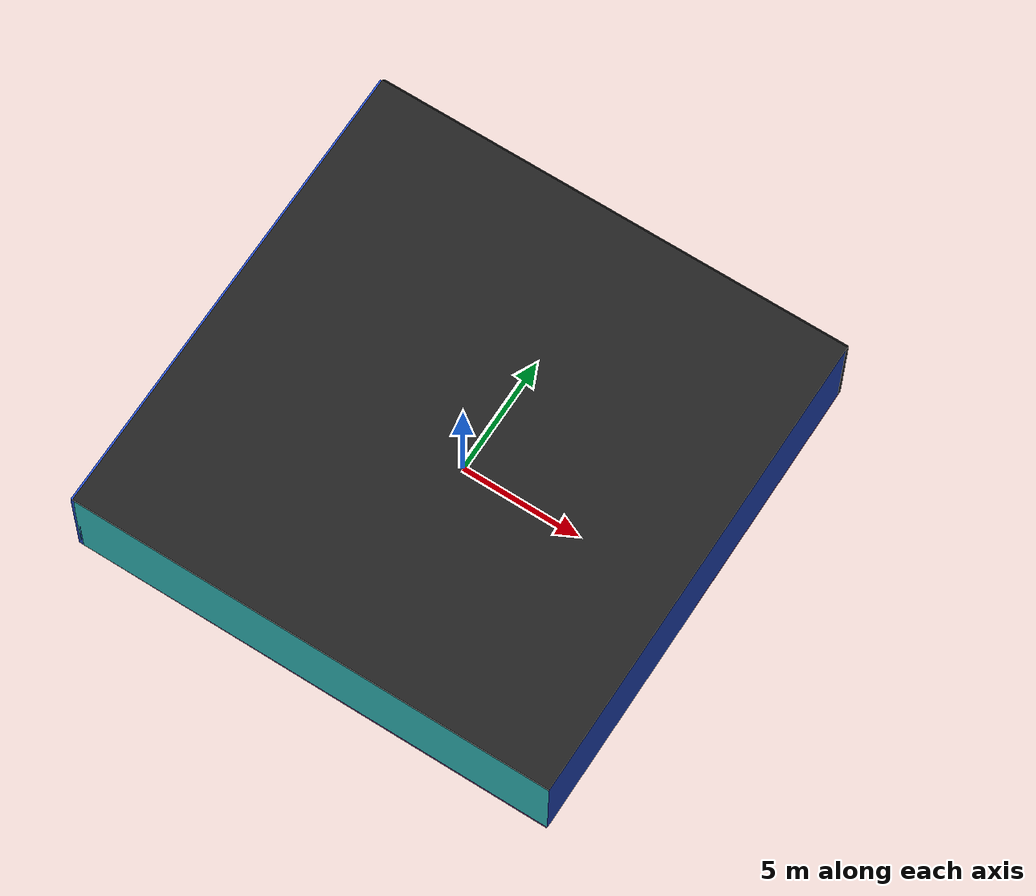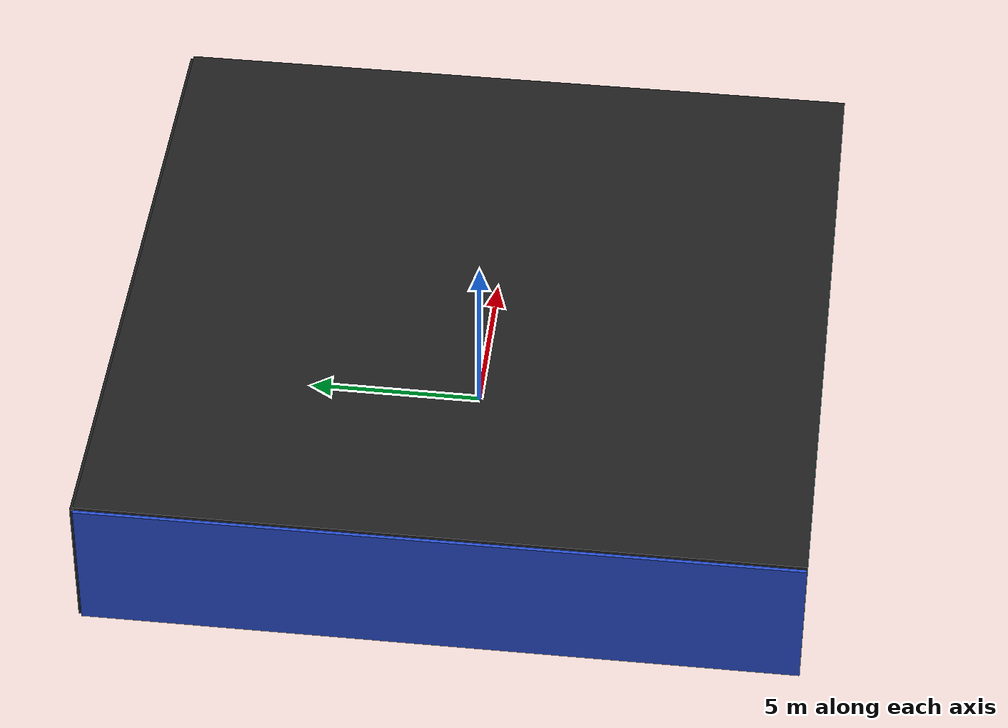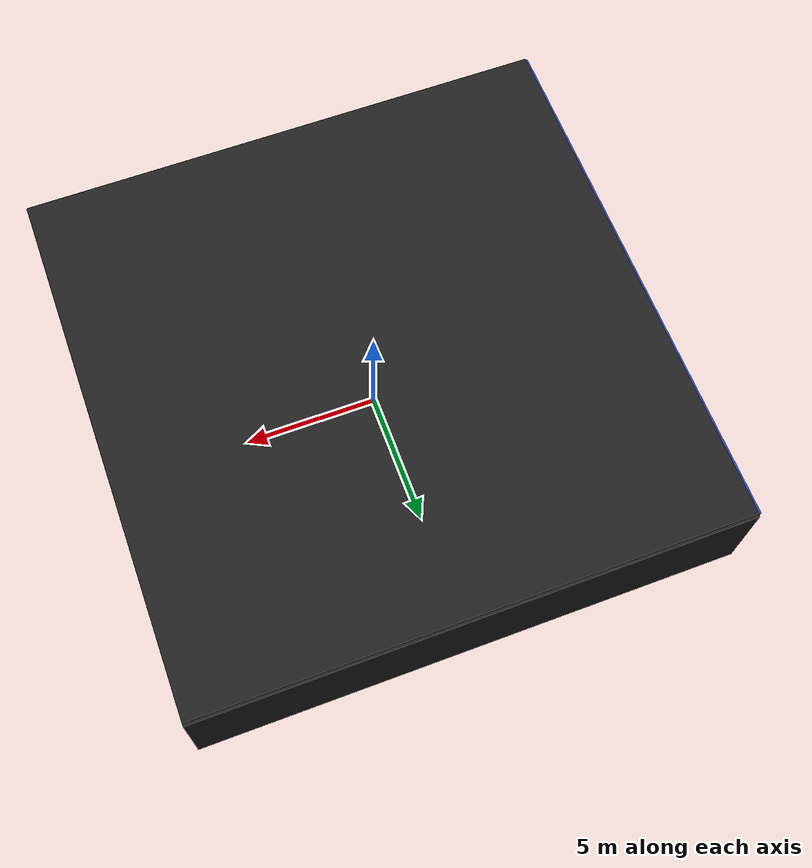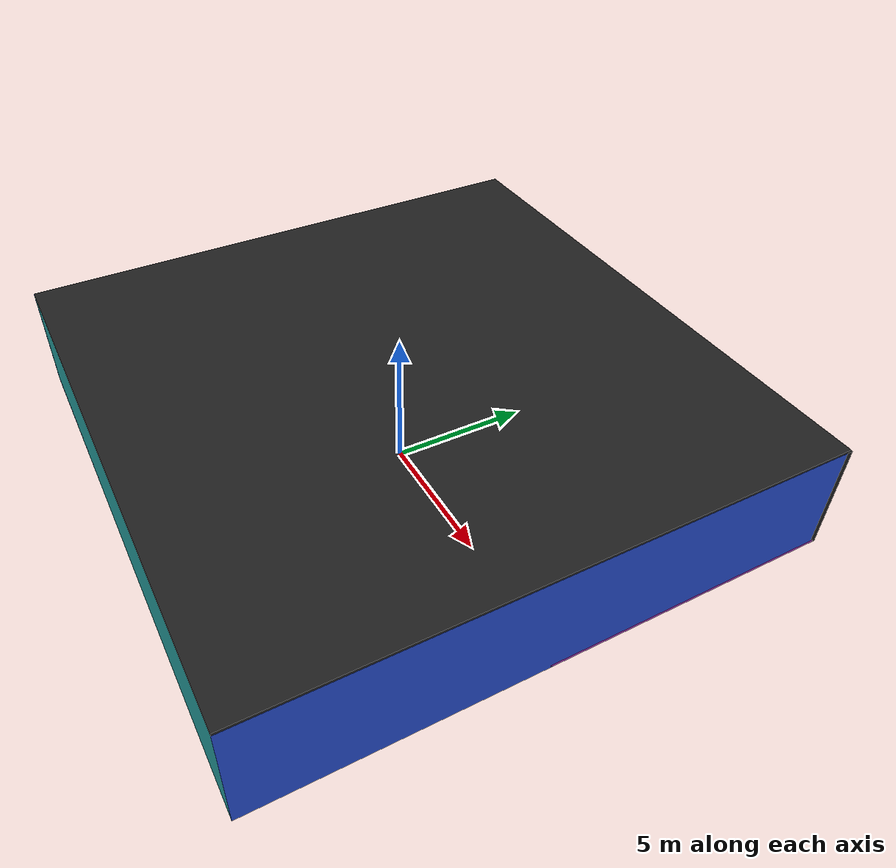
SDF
<sdf version="1.4">
 <world name="default">
  <physics type="ode">
   <max_step_size>0.001</max_step_size>
   <real_time_factor>1</real_time_factor>
   <real_time_update_rate>1000</real_time_update_rate>
   <gravity>0 0 -9.8</gravity>
  </physics>
  <scene><ambient>0.4 0.4 0.4 1</ambient><background>0.7 0.7 0.7 1</background><shadows>1</shadows></scene>
  <model name="Surrounding">
   <static>1</static>
   <link name="Ceiling">
    <collision name="Ceiling_Collision"><geometry><box><size>20 20 0.1</size></box></geometry></collision>
    <visual name="Ceiling_Visual">
     <geometry><box><size>20 20 0.1</size></box></geometry>
     <material>
      <script><uri>file://media/materials/scripts/gazebo.material</uri><name>Gazebo/FlatBlack</name></script>
     </material>
    </visual>
    <pose>0 0 4.05 0 0 0</pose>
   </link>
   <link name="Wall_South">
    <collision name="Wall_South_Collision">
     <geometry><box><size>20 0 4</size></box></geometry>
     <pose>0 0 2 0 -0 0</pose>
    </collision>
    <visual name="Wall_South_Visual">
     <pose>0 0 2 0 -0 0</pose>
     <geometry><box><size>20 0 4</size></box></geometry>
     <material>
      <script><uri>file://media/materials/scripts/gazebo.material</uri><name>Gazebo/TurquoiseGlow</name></script>
     </material>
    </visual>
    <velocity_decay><linear>0</linear><angular>0</angular></velocity_decay>
    <pose>0 -10 0 0 -0 0</pose>
   </link>
   <link name="Wall_East">
    <collision name="Wall_21_Collision">
     <geometry><box><size>20 0 4</size></box></geometry>
     <pose>0 0 2 0 -0 0</pose>
    </collision>
    <visual name="Wall_21_Visual">
     <pose>0 0 2 0 -0 0</pose>
     <geometry><box><size>20 0 4</size></box></geometry>
     <material>
      <script><uri>file://media/materials/scripts/gazebo.material</uri><name>Gazebo/BlueLaser</name></script>
     </material>
    </visual>
    <velocity_decay><linear>0</linear><angular>0</angular></velocity_decay>
    <pose>10 0 0 0 -0 1.5708</pose>
   </link>
   <link name="Wall_North">
    <collision name="Wall_22_Collision">
     <geometry><box><size>20 0.2 4</size></box></geometry>
     <pose>0 0 2 0 -0 0</pose>
    </collision>
    <visual name="Wall_22_Visual">
     <pose>0 0 2 0 -0 0</pose>
     <geometry><box><size>20 0.2 4</size></box></geometry>
     <material>
      <script><uri>file://media/materials/scripts/gazebo.material</uri><name>Gazebo/Black</name></script>
     </material>
    </visual>
    <velocity_decay><linear>0</linear><angular>0</angular></velocity_decay>
    <pose>0 10 0 0 -0 0</pose>
   </link>
   <link name="Wall_West">
    <collision name="Wall_23_Collision">
     <geometry><box><size>20 0.2 4</size></box></geometry>
     <pose>0 0 2 0 -0 0</pose>
    </collision>
    <visual name="Wall_23_Visual">
     <pose>0 0 2 0 -0 0</pose>
     <geometry><box><size>20 0.2 4</size></box></geometry>
     <material>
      <script><uri>file://media/materials/scripts/gazebo.material</uri><name>Gazebo/Blue</name></script>
     </material>
    </visual>
    <velocity_decay><linear>0</linear><angular>0</angular></velocity_decay>
    <pose>-10 0 0 0 0 -1.5708</pose>
   </link>
   <link name="Ground_link">
    <collision name="collision">
     <pose>0 0 .05 0 -0 0</pose>
     <geometry><box><size>20 20 0.1</size></box></geometry>
    </collision>
    <visual name="visual">
     <pose>0 0 .05 0 -0 0</pose>
     <geometry><box><size>20 20 0.1</size></box></geometry>
     <material>
      <script><uri>file://media/materials/scripts/gazebo.material</uri><name>Gazebo/PurpleGlow</name></script>
     </material>
    </visual>
   </link>
   <static>1</static>
  </model>
  <spherical_coordinates>
   <surface_model>EARTH_WGS84</surface_model>
   <latitude_deg>0</latitude_deg>
   <longitude_deg>0</longitude_deg>
   <elevation>0</elevation>
   <heading_deg>0</heading_deg>
  </spherical_coordinates>
  <light name="lightball_0" type="diffuse">
   <diffuse>0.8 0.8 0.8 1</diffuse>
   <specular>0.2 0.2 0.2 1</specular>
   <attenuation>
    <range>100</range>
    <constant>0.7</constant>
    <linear>0.01</linear>
    <quadratic>0.001</quadratic>
   </attenuation>
   <direction>-0.5 0.1 -0.9</direction>
   <pose>6.11108489693 -5.58570008549 3.73061773345 0 0 0</pose>
  </light>
  <light name="lightball_1" type="diffuse">
   <diffuse>0.8 0.8 0.8 1</diffuse>
   <specular>0.2 0.2 0.2 1</specular>
   <attenuation>
    <range>100</range>
    <constant>0.7</constant>
    <linear>0.01</linear>
    <quadratic>0.001</quadratic>
   </attenuation>
   <direction>-0.5 0.1 -0.9</direction>
   <pose>-1.68103750356 -7.59623060592 2.11062444611 0 0 0</pose>
  </light>
  <light name="lightball_2" type="diffuse">
   <diffuse>0.8 0.8 0.8 1</diffuse>
   <specular>0.2 0.2 0.2 1</specular>
   <attenuation>
    <range>100</range>
    <constant>0.7</constant>
    <linear>0.01</linear>
    <quadratic>0.001</quadratic>
   </attenuation>
   <direction>-0.5 0.1 -0.9</direction>
   <pose>-5.14067272497 -0.369083790909 0.642462579813 0 0 0</pose>
  </light>
  <light name="lightball_3" type="diffuse">
   <diffuse>0.8 0.8 0.8 1</diffuse>
   <specular>0.2 0.2 0.2 1</specular>
   <attenuation>
    <range>100</range>
    <constant>0.7</constant>
    <linear>0.01</linear>
    <quadratic>0.001</quadratic>
   </attenuation>
   <direction>-0.5 0.1 -0.9</direction>
   <pose>-6.56355087726 -5.18750412202 1.52714559783 0 0 0</pose>
  </light>
  <light name="lightball_4" type="diffuse">
   <diffuse>0.8 0.8 0.8 1</diffuse>
   <specular>0.2 0.2 0.2 1</specular>
   <attenuation>
    <range>100</range>
    <constant>0.7</constant>
    <linear>0.01</linear>
    <quadratic>0.001</quadratic>
   </attenuation>
   <direction>-0.5 0.1 -0.9</direction>
   <pose>4.73401783268 -2.24292268995 0.69580318051 0 0 0</pose>
  </light>
  <light name="lightball_5" type="diffuse">
   <diffuse>0.8 0.8 0.8 1</diffuse>
   <specular>0.2 0.2 0.2 1</specular>
   <attenuation>
    <range>100</range>
    <constant>0.7</constant>
    <linear>0.01</linear>
    <quadratic>0.001</quadratic>
   </attenuation>
   <direction>-0.5 0.1 -0.9</direction>
   <pose>-7.81544650893 5.15642917908 0.742066333562 0 0 0</pose>
  </light>
  <include><uri>model://cabinet</uri><pose>7.16128273878 -7.12487925031 0 0 0 1.50933452583</pose></include>
  <include>
   <uri>model://textured_shapes</uri>
   <pose>7.54029785123 -4.92879642017 0 0 0 3.07221844687</pose>
  </include>
  <include>
   <uri>model://robocup_3Dsim_goal</uri>
   <pose>7.43149311899 -1.35623789874 0 0 0 1.93109908205</pose>
  </include>
 </world>
</sdf>

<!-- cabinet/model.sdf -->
<sdf version="1.5">
  <model name="cabinet">
    <static>true</static>
    <link name="cabinet_bottom_plate">
      <inertial>
        <pose>0 0 -1 0 0 0</pose>
        <inertia>
          <ixx>2.050000</ixx>
          <ixy>0</ixy>
          <ixz>0</ixz>
          <iyy>2.050000</iyy>
          <iyz>0</iyz>
          <izz>2.050000</izz>
        </inertia>
        <mass>25.000000</mass>
      </inertial>
      <collision name="cabinet_bottom_plate_geom">
        <pose>0 0 0.010000 0 0 0</pose>
        <geometry>
          <box>
            <size>0.450000 0.450000 0.020000</size>
          </box>
        </geometry>
      </collision>
      <visual name="cabinet_bottom_plate_geom_visual">
        <pose>0 0 0.010000 0 0 0</pose>
        <geometry>
          <box>
            <size>0.450000 0.450000 0.020000</size>
          </box>
        </geometry>
        <material>
          <script>
            <uri>model://media/materials/scripts/gazebo.material</uri>
            <name>Gazebo/Wood</name>
          </script>
        </material>
      </visual>
      <collision name="cabinet_bottom_plate_geom_cabinet_back_plate">
        <pose>0.235000 0 0.510000 0 0 0</pose>
        <geometry>
          <box>
            <size>0.020000 0.450000 1.020000</size>
          </box>
        </geometry>
      </collision>
      <visual name="cabinet_bottom_plate_geom_cabinet_back_plate_visual">
        <pose>0.235000 0 0.510000 0 0 0</pose>
        <geometry>
          <box>
            <size>0.020000 0.450000 1.020000</size>
          </box>
        </geometry>
        <material>
          <script>
            <uri>model://media/materials/scripts/gazebo.material</uri>
            <name>Gazebo/Wood</name>
          </script>
        </material>
      </visual>
      <collision name="cabinet_bottom_plate_geom_cabinet_left_plate">
        <pose>0 0.235000 0.510000 0 0 0</pose>
        <geometry>
          <box>
            <size>0.450000 0.020000 1.020000</size>
          </box>
        </geometry>
      </collision>
      <visual name="cabinet_bottom_plate_geom_cabinet_left_plate_visual">
        <pose>0 0.235000 0.510000 0 0 0</pose>
        <geometry>
          <box>
            <size>0.450000 0.020000 1.020000</size>
          </box>
        </geometry>
        <material>
          <script>
            <uri>model://media/materials/scripts/gazebo.material</uri>
            <name>Gazebo/Wood</name>
          </script>
        </material>
      </visual>
      <collision name="cabinet_bottom_plate_geom_cabinet_middle_plate">
        <pose>0 0 0.510000 0 0 0</pose>
        <geometry>
          <box>
            <size>0.450000 0.450000 0.020000</size>
          </box>
        </geometry>
      </collision>
      <visual name="cabinet_bottom_plate_geom_cabinet_middle_plate_visual">
        <pose>0 0 0.510000 0 0 0</pose>
        <geometry>
          <box>
            <size>0.450000 0.450000 0.020000</size>
          </box>
        </geometry>
        <material>
          <script>
            <uri>model://media/materials/scripts/gazebo.material</uri>
            <name>Gazebo/Wood</name>
          </script>
        </material>
      </visual>
      <collision name="cabinet_bottom_plate_geom_cabinet_right_plate">
        <pose>0 -0.235000 0.510000 0 0 0</pose>
        <geometry>
          <box>
            <size>0.450000 0.020000 1.020000</size>
          </box>
        </geometry>
      </collision>
      <visual name="cabinet_bottom_plate_geom_cabinet_right_plate_visual">
        <pose>0 -0.235000 0.510000 0 0 0</pose>
        <geometry>
          <box>
            <size>0.450000 0.020000 1.020000</size>
          </box>
        </geometry>
        <material>
          <script>
            <uri>model://media/materials/scripts/gazebo.material</uri>
            <name>Gazebo/Wood</name>
          </script>
        </material>
      </visual>
      <collision name="cabinet_bottom_plate_geom_cabinet_top_plate">
        <pose>0 0 1.010000 0 0 0</pose>
        <geometry>
          <box>
            <size>0.450000 0.450000 0.020000</size>
          </box>
        </geometry>
      </collision>
      <visual name="cabinet_bottom_plate_geom_cabinet_top_plate_visual">
        <pose>0 0 1.010000 0 0 0</pose>
        <geometry>
          <box>
            <size>0.450000 0.450000 0.020000</size>
          </box>
        </geometry>
        <material>
          <script>
            <uri>model://media/materials/scripts/gazebo.material</uri>
            <name>Gazebo/Wood</name>
          </script>
        </material>
      </visual>
    </link>
  </model>
</sdf>

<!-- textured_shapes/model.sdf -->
<sdf version="1.6">
  <model name="textured_shapes">
    <pose>0 0 0.5 0 0 0</pose>
    <link name="box">
      <pose>0 -1.5 0 0 0 0</pose>
      <collision name="collision">
        <geometry>
          <box>
            <size>1 1 1</size>
          </box>
        </geometry>
      </collision>
      <visual name="visual">
        <geometry>
          <box>
            <size>1 1 1</size>
          </box>
        </geometry>
        <material>
          <script>
            <uri>model://../model_source/models/textured_shapes/materials/scripts</uri>
            <uri>model://../model_source/models/textured_shapes/materials/textures</uri>
            <name>TexturedShape/Squares</name>
          </script>
        </material>
      </visual>
    </link>
    <link name="sphere">
      <collision name="collision">
        <geometry>
          <sphere>
            <radius>0.5</radius>
          </sphere>
        </geometry>
      </collision>
      <visual name="visual">
        <geometry>
          <sphere>
            <radius>0.5</radius>
          </sphere>
        </geometry>
        <material>
          <script>
            <uri>model://../model_source/models/textured_shapes/materials/scripts</uri>
            <uri>model://../model_source/models/textured_shapes/materials/textures</uri>
            <name>TexturedShape/Squares</name>
          </script>
        </material>
      </visual>
    </link>
    <link name="cylinder">
      <pose>0 1.5 0 0 0 0</pose>
      <collision name="collision">
        <geometry>
          <cylinder>
            <radius>0.5</radius>
            <length>1</length>
          </cylinder>
        </geometry>
      </collision>
      <visual name="visual">
        <geometry>
          <cylinder>
            <radius>0.5</radius>
            <length>1</length>
          </cylinder>
        </geometry>
        <material>
          <script>
            <uri>model://../model_source/models/textured_shapes/materials/scripts</uri>
            <uri>model://../model_source/models/textured_shapes/materials/textures</uri>
            <name>TexturedShape/Squares</name>
          </script>
        </material>
      </visual>
    </link>
  </model>
</sdf>

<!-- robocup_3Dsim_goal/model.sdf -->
<sdf version="1.5">
  <model name="robocup_3d_goal">
    <static>true</static>
    <link name="left_post">
      <pose>0 1.05 0.45 0 0 0</pose>
      <collision name="collision">
        <geometry>
          <cylinder>
            <radius>0.05</radius>
            <length>0.9</length>
          </cylinder>
        </geometry>
      </collision>
      <visual name="visual">
        <geometry>
          <cylinder>
            <radius>0.05</radius>
            <length>0.9</length>
          </cylinder>
        </geometry>
        <material>
          <script>
            <uri>file://media/materials/scripts/gazebo.material</uri>
            <name>Gazebo/ZincYellow</name>
          </script>
        </material>
      </visual>
    </link>
    <link name="left_support_horiz_lower">
      <pose>0.30 1.05 0.01 0 0 0</pose>
      <collision name="collision">
        <geometry>
          <box>
            <size>0.50 0.02 0.02</size>
          </box>
        </geometry>
      </collision>
      <visual name="visual">
        <geometry>
          <box>
            <size>0.50 0.02 0.02</size>
          </box>
        </geometry>
        <material>
          <script>
            <uri>file://media/materials/scripts/gazebo.material</uri>
            <name>Gazebo/White</name>
          </script>
        </material>
      </visual>
    </link>
    <link name="left_support_horiz_upper">
      <pose>0.30 1.05 0.79 0 0 0</pose>
      <collision name="collision">
        <geometry>
          <box>
            <size>0.50 0.02 0.02</size>
          </box>
        </geometry>
      </collision>
      <visual name="visual">
        <geometry>
          <box>
            <size>0.50 0.02 0.02</size>
          </box>
        </geometry>
        <material>
          <script>
            <uri>file://media/materials/scripts/gazebo.material</uri>
            <name>Gazebo/White</name>
          </script>
        </material>
      </visual>
    </link>
    <link name="left_support_vertical">
      <pose>0.56 1.05 0.4 0 1.5708 0</pose>
      <collision name="collision">
        <geometry>
          <box>
            <size>0.80 0.02 0.02</size>
          </box>
        </geometry>
      </collision>
      <visual name="visual">
        <geometry>
          <box>
            <size>0.80 0.02 0.02</size>
          </box>
        </geometry>
        <material>
          <script>
            <uri>file://media/materials/scripts/gazebo.material</uri>
            <name>Gazebo/White</name>
          </script>
        </material>
      </visual>
    </link>
    <link name="right_support_horiz_lower">
      <pose>0.30 -1.05 0.01 0 0 0</pose>
      <collision name="collision">
        <geometry>
          <box>
            <size>0.50 0.02 0.02</size>
          </box>
        </geometry>
      </collision>
      <visual name="visual">
        <geometry>
          <box>
            <size>0.50 0.02 0.02</size>
          </box>
        </geometry>
        <material>
          <script>
            <uri>file://media/materials/scripts/gazebo.material</uri>
            <name>Gazebo/White</name>
          </script>
        </material>
      </visual>
    </link>
    <link name="right_support_horiz_upper">
      <pose>0.30 -1.05 0.79 0 0 0</pose>
      <collision name="collision">
        <geometry>
          <box>
            <size>0.50 0.02 0.02</size>
          </box>
        </geometry>
      </collision>
      <visual name="visual">
        <geometry>
          <box>
            <size>0.50 0.02 0.02</size>
          </box>
        </geometry>
        <material>
          <script>
            <uri>file://media/materials/scripts/gazebo.material</uri>
            <name>Gazebo/White</name>
          </script>
        </material>
      </visual>
    </link>
    <link name="right_support_vertical">
      <pose>0.56 -1.05 0.4 0 1.5708 0</pose>
      <collision name="collision">
        <geometry>
          <box>
            <size>0.80 0.02 0.02</size>
          </box>
        </geometry>
      </collision>
      <visual name="visual">
        <geometry>
          <box>
            <size>0.80 0.02 0.02</size>
          </box>
        </geometry>
        <material>
          <script>
            <uri>file://media/materials/scripts/gazebo.material</uri>
            <name>Gazebo/White</name>
          </script>
        </material>
      </visual>
    </link>
    <link name="center_support_horiz_lower">
      <pose>0.56 0 0.01 0 1.5708 0</pose>
      <collision name="collision">
        <geometry>
          <box>
            <size>0.02 2.08 0.02</size>
          </box>
        </geometry>
      </collision>
      <visual name="visual">
        <geometry>
          <box>
            <size>0.02 2.08 0.02</size>
          </box>
        </geometry>
        <material>
          <script>
            <uri>file://media/materials/scripts/gazebo.material</uri>
            <name>Gazebo/White</name>
          </script>
        </material>
      </visual>
    </link>
    <link name="center_support_horiz_upper">
      <pose>0.56 0 0.79 0 1.5708 0</pose>
      <collision name="collision">
        <geometry>
          <box>
            <size>0.02 2.08 0.02</size>
          </box>
        </geometry>
      </collision>
      <visual name="visual">
        <geometry>
          <box>
            <size>0.02 2.08 0.02</size>
          </box>
        </geometry>
        <material>
          <script>
            <uri>file://media/materials/scripts/gazebo.material</uri>
            <name>Gazebo/White</name>
          </script>
        </material>
      </visual>
    </link>
    <link name="right_post">
      <pose>0 -1.05 0.45 0 0 0</pose>
      <collision name="collision">
        <geometry>
          <cylinder>
            <radius>0.05</radius>
            <length>0.9</length>
          </cylinder>
        </geometry>
      </collision>
      <visual name="visual">
        <geometry>
          <cylinder>
            <radius>0.05</radius>
            <length>0.9</length>
          </cylinder>
        </geometry>
        <material>
          <script>
            <uri>file://media/materials/scripts/gazebo.material</uri>
            <name>Gazebo/ZincYellow</name>
          </script>
        </material>
      </visual>
    </link>
    <link name="crossbar">
      <pose>0 0 0.85 1.57 1.57 0</pose>
      <collision name="collision">
        <geometry>
          <cylinder>
            <radius>0.05</radius>
            <length>2.0</length>
          </cylinder>
        </geometry>
      </collision>
      <visual name="visual">
        <geometry>
          <cylinder>
            <radius>0.05</radius>
            <length>2.0</length>
          </cylinder>
        </geometry>
        <material>
          <script>
            <uri>file://media/materials/scripts/gazebo.material</uri>
            <name>Gazebo/ZincYellow</name>
          </script>
        </material>
      </visual>
    </link>
    <link name="center_net">
      <pose>0.56 0 0.40 0 0 0</pose>
      <collision name="collision">
        <geometry>
          <box>
            <size>0.01 2.1 0.80</size>
          </box>
        </geometry>
      </collision>
      <visual name="visual">
        <geometry>
          <box>
            <size>0.01 2.1 0.80</size>
          </box>
        </geometry>
        <material>
          <script>
            <uri>model://../model_source/models/robocup09_spl_field/materials/scripts/</uri>
            <uri>model://../model_source/models/robocup09_spl_field/materials/textures/</uri>
            <name>RoboCup/Net</name>
          </script>
        </material>
      </visual>
    </link>
    <link name="left_net">
      <pose>0.30 1.05 0.40 0 0 0</pose>
      <collision name="collision">
        <geometry>
          <box>
            <size>0.50 0.01 0.76</size>
          </box>
        </geometry>
      </collision>
      <visual name="visual">
        <geometry>
          <box>
            <size>0.50 0.01 0.76</size>
          </box>
        </geometry>
        <material>
          <script>
            <uri>model://../model_source/models/robocup09_spl_field/materials/scripts/</uri>
            <uri>model://../model_source/models/robocup09_spl_field/materials/textures/</uri>
            <name>RoboCup/Net</name>
          </script>
        </material>
      </visual>
    </link>
    <link name="right_net">
      <pose>0.30 -1.05 0.40 0 0 0</pose>
      <collision name="collision">
        <geometry>
          <box>
            <size>0.50 0.01 0.76</size>
          </box>
        </geometry>
      </collision>
      <visual name="visual">
        <geometry>
          <box>
            <size>0.50 0.01 0.76</size>
          </box>
        </geometry>
        <material>
          <script>
            <uri>model://../model_source/models/robocup09_spl_field/materials/scripts/</uri>
            <uri>model://../model_source/models/robocup09_spl_field/materials/textures/</uri>
            <name>RoboCup/Net</name>
          </script>
        </material>
      </visual>
    </link>
  </model>
</sdf>
